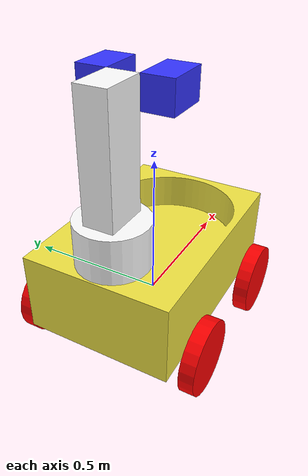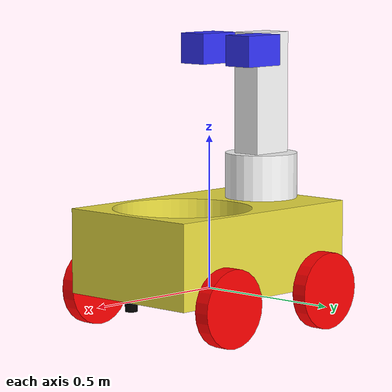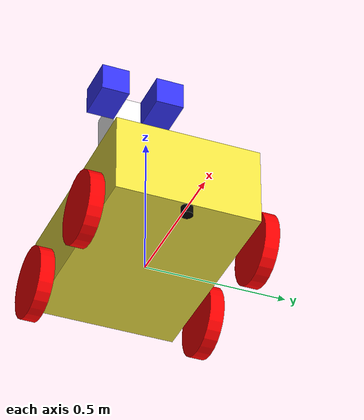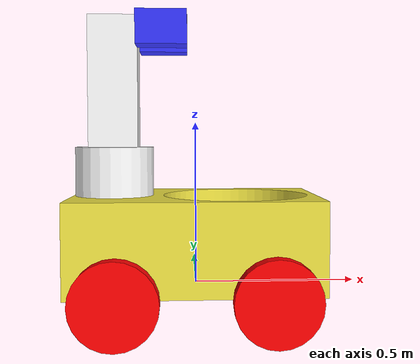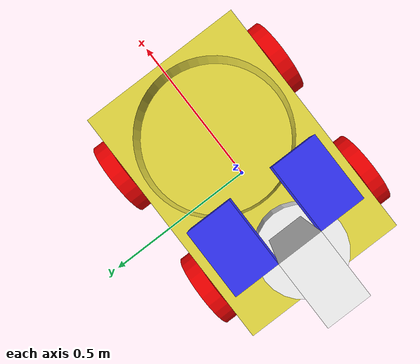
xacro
<?xml version="1.0"?>
<robot xmlns:xacro="http://www.ros.org/wiki/xacro"  name="robot">
<!--xacro:include filename="test.xacro"/-->
<xacro:include filename="robot_core.xacro"/>
<xacro:include filename="gazebo_control.xacro"/>
<xacro:include filename="arm_control.xacro"/>
<xacro:include filename="gp_control.xacro"/>

<!--xacro:include filename="robot_core.xacro"/-->
    <ros2_control name="gripper_robot_gazebo_system" type="system">
        <hardware>
            <plugin>gazebo_ros2_control/GazeboSystem</plugin>
        </hardware>
        <xacro:grip_ct/>
        <xacro:gf1_ct/>
        <xacro:gf2_ct/>
        <xacro:cy_ct/>
    </ros2_control>
    <xacro:robot_controller/>
</robot>

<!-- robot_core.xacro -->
<robot xmlns:xacro="http://www.ros.org/wiki/xacro" >
<xacro:include filename="inertial_macros.xacro" />
<xacro:include filename="lidar.xacro" />

    <material name="white">
        <color rgba="1 1 1 1" />
    </material>

    <material name="orange">
        <color rgba="1 0.3 0.1 1"/>
    </material>

    <material name="blue">
        <color rgba="0.2 0.2 1 1"/>
    </material>

    <material name="black">
        <color rgba="0 0 0 1"/>
    </material>

    <material name="red">
        <color rgba="1 0 0 1"/>
    </material>

    <!-- BASE LINK -->

    <link name="base_link">
    </link>

    <!-- BASE_FOOTPRINT LINK -->

    <joint name="base_footprint_joint" type="fixed">
    <parent link="base_link"/>
    <child link="base_footprint"/>
    <origin xyz="0 0 0" rpy="0 0 0"/>
    </joint>

    <link name="base_footprint">
    </link>

    <!--BODIOOOO-->
    <joint name="Body_joint2" type="fixed">
    <parent link="base_link"/>
    <child link="body"/>
    <origin xyz="0 0 0"/>
    <dynamics friction="100"/>
    </joint>

    <link name="body">
    <visual>
        <origin xyz="0 0 0" rpy="0 0 0"/>
        <geometry>
            <mesh filename="file:///home/tiis/yeehee_ws/src/articubot_one/description/body1.dae" scale="1 1 1"/>

        </geometry>
    </visual>
    <collision>
        <origin xyz="0 0 0" rpy="0 0 0"/>
        <geometry>
            <mesh filename="file:///home/tiis/yeehee_ws/src/articubot_one/description/body1.dae" scale="1 1 1"/>
        </geometry>
    </collision>
    <xacro:inertial_box mass="10" x="0.7" y="0.4" z="0.1">
        <origin xyz="0 0 0.25" rpy="0 0 0"/>
    </xacro:inertial_box>
    </link>

    <!--FRONT LEFTY-->
    <joint name="LFW_joint" type="continuous">
    <parent link="base_link"/>
    <child link="LFW"/>
    <origin xyz="0.225 0.3 0" rpy="-${pi/2} 0 0"/>
    <axis xyz="0 0 1"/>
    </joint>

    <link name="LFW">
    <visual>
        <origin xyz="0 0 0" rpy="0 0 0"/>
        <geometry>
            <cylinder length="0.05" radius="0.125" />
        </geometry>
        <material name="red"/>
    </visual>
    <collision>
        <origin xyz="0 0 0" rpy="0 0 0"/>
        <geometry>
            <cylinder length="0.05" radius="0.125" />
        </geometry>
    </collision>
    <xacro:inertial_cylinder mass="3" length="0.05" radius="0.125">
        <origin xyz="0 0 0" rpy="0 0 0"/>
    </xacro:inertial_cylinder>
    <mu1 value="0.001"/>
    <mu2 value="0.001"/>
    </link>

    <!--FRONT RIGHTY-->
    <joint name="RFW_joint" type="continuous">
    <parent link="base_link"/>
    <child link="RFW"/>
    <origin xyz="0.225 -0.3 0" rpy="-${pi/2} 0 0"/>
    <axis xyz="0 0 1"/>
    </joint>

    <link name="RFW">
    <visual>
        <origin xyz="0 0 0" rpy="0 0 0"/>
        <geometry>
            <cylinder length="0.05" radius="0.125" />
        </geometry>
        <material name="red"/>
    </visual>
    <collision>
        <origin xyz="0 0 0" rpy="0 0 0"/>
        <geometry>
            <cylinder length="0.05" radius="0.125" />
        </geometry>
    </collision>
    <xacro:inertial_cylinder mass="3" length="0.05" radius="0.125">
        <origin xyz="0 0 0" rpy="0 0 0"/>
    </xacro:inertial_cylinder>
    <mu1 value="0.001"/>
    <mu2 value="0.001"/>
    </link>

    <!--REAR LEFTY-->
    <joint name="RLW_joint" type="continuous">
    <parent link="base_link"/>
    <child link="RLW"/>
    <origin xyz="-0.225 0.3 0" rpy="-${pi/2} 0 0"/>
    <axis xyz="0 0 1"/>
    </joint>

    <link name="RLW">
    <visual>
        <origin xyz="0 0 0" rpy="0 0 0"/>
        <geometry>
            <cylinder length="0.05" radius="0.125" />
        </geometry>
        <material name="red"/>
    </visual>
    <collision>
        <origin xyz="0 0 0" rpy="0 0 0"/>
        <geometry>
            <cylinder length="0.05" radius="0.125" />
        </geometry>
    </collision>
    <xacro:inertial_cylinder mass="3" length="0.05" radius="0.125">
        <origin xyz="0 0 0" rpy="0 0 0"/>
    </xacro:inertial_cylinder>
    <mu1 value="0.001"/>
    <mu2 value="0.001"/>
    </link>

    <!--REAR RIGHTY-->
    <joint name="RRW_joint" type="continuous">
    <parent link="base_link"/>
    <child link="RRW"/>
    <origin xyz="-0.225 -0.3 0" rpy="-${pi/2} 0 0"/>
    <axis xyz="0 0 1"/>
    </joint>

    <link name="RRW">
    <visual>
        <origin xyz="0 0 0" rpy="0 0 0"/>
        <geometry>
            <cylinder length="0.05" radius="0.125" />
        </geometry>
        <material name="red"/>
    </visual>
    <collision>
        <origin xyz="0 0 0" rpy="0 0 0"/>
        <geometry>
            <cylinder length="0.05" radius="0.125" />
        </geometry>
    </collision>
    <xacro:inertial_cylinder mass="3" length="0.05" radius="0.125">
        <origin xyz="0 0 0" rpy="0 0 0"/>
    </xacro:inertial_cylinder>
    <mu1 value="0.001"/>
    <mu2 value="0.001"/>
    </link>

    <!-- Fixed younggu -->
    <joint name="cy_joint" type="revolute">
    <parent link="base_link"/>
    <child link="cy"/>
    <origin xyz="-0.25 0 0.35"/>
    <axis xyz="0 0 1"/>
    <limit lower="0" upper="${pi}" velocity="0.1" effort="100" />
    </joint>

    <link name="cy">
    <visual>
        <origin xyz="0 0 0" rpy="0 0 0"/>
        <geometry>
            <cylinder length="0.15" radius="0.12" />
        </geometry>
        <material name="white"/>
    </visual>
    <collision>
        <origin xyz="0 0 0" rpy="0 0 0"/>
        <geometry>
            <cylinder length="0.15" radius="0.12" />
        </geometry>
    </collision>
    <xacro:inertial_cylinder mass="0.1" length="0.15" radius="0.12">
        <origin xyz="0 0 0" rpy="0 0 0"/>
    </xacro:inertial_cylinder>
    </link>

    <!-- Grip1 -->

    <joint name="grip1_joint" type="revolute">
    <parent link="cy"/>
    <child link="grip1"/>
    <origin xyz="0.075 0 0.075"/>
    <limit lower="0" upper="${pi/2}" velocity="0.1" effort="100" />
    <axis xyz="0 1 0"/>
    </joint>

    <link name="grip1">
    <visual>
        <origin xyz="-0.075 0 0.2" rpy="${-pi/2} ${-pi/2} 0"/>
        <geometry>
            <box size="0.4 0.15 0.1"/>
        </geometry>
        <material name="white"/>
    </visual>
    <collision>
        <origin xyz="-0.075 0 0.2" rpy="${-pi/2} ${-pi/2} 0"/>
        <geometry>
            <box size="0.4 0.15 0.15"/>
        </geometry>
    </collision>
    <xacro:inertial_box mass="0.08" x="0.5" y="0.15" z="0.1">
        <origin xyz="-0.075 0 0.2" rpy="${-pi/2} ${-pi/2} 0"/>
    </xacro:inertial_box>
    </link>

    <!-- GripFing 1 -->
    <joint name="gf1_joint" type="revolute">
    <parent link="grip1"/>
    <child link="gf1"/>
    <origin xyz="0 -0.05 0.4"/>
    <limit lower="0" upper="${pi/12}" velocity="0.1" effort="100" />
    <axis xyz="0 0 1"/>
    </joint>

    <link name="gf1">
    <visual>
      <origin xyz="0.075 -0.05 -0.05" rpy="${-pi/2} ${-pi/2} 0"/>
      <geometry>
        <box size="0.1 0.15 0.1"/>
      </geometry>
      <material name="blue"/>
    </visual>
    <collision>
      <origin xyz="0.075 -0.05 -0.05" rpy="${-pi/2} ${-pi/2} 0"/>
      <geometry>
        <box size="0.1 0.15 0.1"/>
      </geometry>
      </collision>
    <xacro:inertial_box mass="0.02" x="0.1" y="0.15" z="0.1">
      <origin xyz="0.075 -0.05 -0.05" rpy="${-pi/2} ${-pi/2} 0"/>
    </xacro:inertial_box>
  </link>

    <!-- GripFing 2 -->
    <joint name="gf2_joint" type="revolute">
    <parent link="grip1"/>
    <child link="gf2"/>
    <origin xyz="0 0.05 0.4"/>
    <limit lower="0" upper="${-pi/12}" velocity="0.1" effort="100" />
    <axis xyz="0 0 1"/>
    <mimic joint="gf1_joint" multiplier="-1.0" offset="0.0"/>
    </joint>

    <link name="gf2">
    <visual>
      <origin xyz="0.075 0.05 -0.05" rpy="${-pi/2} ${-pi/2} 0"/>
      <geometry>
        <box size="0.1 0.15 0.1"/>
      </geometry>
      <material name="blue"/>
    </visual>
    <collision>
      <origin xyz="0.075 0.05 -0.05" rpy="${-pi/2} ${-pi/2} 0"/>
      <geometry>
        <box size="0.1 0.15 0.1"/>
      </geometry>
      </collision>
    <xacro:inertial_box mass="0.02" x="0.1" y="0.15" z="0.1">
      <origin xyz="0.075 0.05 -0.05" rpy="${-pi/2} ${-pi/2} 0"/>
    </xacro:inertial_box>
  </link>

</robot>

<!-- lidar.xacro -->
<robot xmlns:xacro="http://www.ros.org/wiki/xacro" >

    <joint name="laser_joint" type="fixed">
        <parent link="body"/>
        <child link="laser_frame"/>
        <origin xyz="0.355 0 -0.015" rpy="0 0 0"/>
    </joint>

    <link name="laser_frame">
        <visual>
            <geometry>
                <cylinder radius="0.02" length="0.03"/>
            </geometry>
            <material name="black"/>
        </visual>
        <collision>
            <geometry>
                <cylinder radius="0.02" length="0.03"/>
            </geometry>
        </collision>
        <xacro:inertial_cylinder mass="0.1" length="0.03" radius="0.02">
            <origin xyz="0 0 0" rpy="0 0 0"/>
        </xacro:inertial_cylinder>
    </link>

    <gazebo reference="laser_frame">
        <material>Gazebo/White</material>

        <sensor name="laser" type="ray">
            <pose> 0 0 0 0 0 0 </pose>
            <visualize>true</visualize>
            <update_rate>10</update_rate>
            <ray>
                <scan>
                    <horizontal>
                        <samples>180</samples>
                        <min_angle>-1.57</min_angle>
                        <max_angle>1.57</max_angle>
                    </horizontal>
                </scan>
                <range>
                    <min>0.3</min>
                    <max>12</max>
                </range>
            </ray>

            <plugin name="laser_controller" filename="libgazebo_ros_ray_sensor.so">
                <ros>
                    <argument>~/out:=scan</argument>
                </ros>
                <output_type>sensor_msgs/LaserScan</output_type>
                <frame_name>laser_frame</frame_name>
            </plugin>
        </sensor>
    </gazebo>

</robot>
